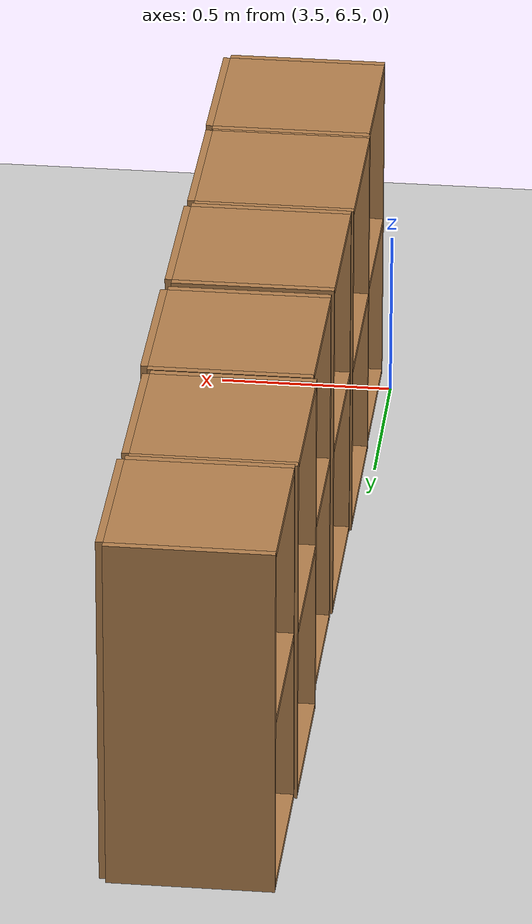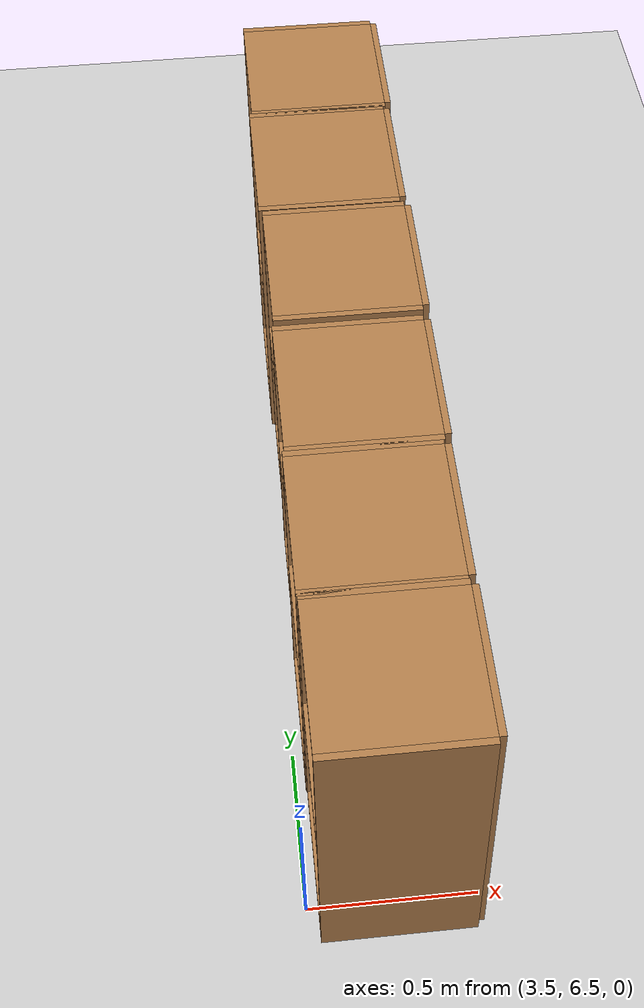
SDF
<sdf version="1.6">
 <world name="default">
  <model name="ground_plane">
   <static>1</static>
   <link name="link">
    <collision name="collision">
     <geometry><plane><normal>0 0 1</normal><size>100 100</size></plane></geometry>
     <surface>
      <contact><collide_bitmask>65535</collide_bitmask></contact>
      <friction><ode><mu>100</mu><mu2>50</mu2></ode></friction>
     </surface>
    </collision>
    <visual name="visual">
     <cast_shadows>0</cast_shadows>
     <geometry><plane><normal>0 0 1</normal><size>100 100</size></plane></geometry>
     <material>
      <script><uri>file://media/materials/scripts/gazebo.material</uri><name>Gazebo/Grey</name></script>
     </material>
    </visual>
   </link>
  </model>
  <model name="cabinet">
   <static>1</static>
   <link name="cabinet_bottom_plate">
    <inertial>
     <pose>0 0 -1 0 -0 0</pose>
     <inertia><ixx>2.05</ixx><ixy>0</ixy><ixz>0</ixz><iyy>2.05</iyy><iyz>0</iyz><izz>2.05</izz></inertia>
     <mass>25</mass>
    </inertial>
    <collision name="cabinet_bottom_plate_geom">
     <pose>0 0 0.01 0 -0 0</pose>
     <geometry><box><size>0.45 0.45 0.02</size></box></geometry>
    </collision>
    <visual name="cabinet_bottom_plate_geom_visual">
     <pose>0 0 0.01 0 -0 0</pose>
     <geometry><box><size>0.45 0.45 0.02</size></box></geometry>
     <material>
      <script><uri>file://media/materials/scripts/gazebo.material</uri><name>Gazebo/Wood</name></script>
     </material>
    </visual>
    <collision name="cabinet_bottom_plate_geom_cabinet_back_plate">
     <pose>0.235 0 0.51 0 -0 0</pose>
     <geometry><box><size>0.02 0.45 1.02</size></box></geometry>
    </collision>
    <visual name="cabinet_bottom_plate_geom_cabinet_back_plate_visual">
     <pose>0.235 0 0.51 0 -0 0</pose>
     <geometry><box><size>0.02 0.45 1.02</size></box></geometry>
     <material>
      <script><uri>file://media/materials/scripts/gazebo.material</uri><name>Gazebo/Wood</name></script>
     </material>
    </visual>
    <collision name="cabinet_bottom_plate_geom_cabinet_left_plate">
     <pose>0 0.235 0.51 0 -0 0</pose>
     <geometry><box><size>0.45 0.02 1.02</size></box></geometry>
    </collision>
    <visual name="cabinet_bottom_plate_geom_cabinet_left_plate_visual">
     <pose>0 0.235 0.51 0 -0 0</pose>
     <geometry><box><size>0.45 0.02 1.02</size></box></geometry>
     <material>
      <script><uri>file://media/materials/scripts/gazebo.material</uri><name>Gazebo/Wood</name></script>
     </material>
    </visual>
    <collision name="cabinet_bottom_plate_geom_cabinet_middle_plate">
     <pose>0 0 0.51 0 -0 0</pose>
     <geometry><box><size>0.45 0.45 0.02</size></box></geometry>
    </collision>
    <visual name="cabinet_bottom_plate_geom_cabinet_middle_plate_visual">
     <pose>0 0 0.51 0 -0 0</pose>
     <geometry><box><size>0.45 0.45 0.02</size></box></geometry>
     <material>
      <script><uri>file://media/materials/scripts/gazebo.material</uri><name>Gazebo/Wood</name></script>
     </material>
    </visual>
    <collision name="cabinet_bottom_plate_geom_cabinet_right_plate">
     <pose>0 -0.235 0.51 0 -0 0</pose>
     <geometry><box><size>0.45 0.02 1.02</size></box></geometry>
    </collision>
    <visual name="cabinet_bottom_plate_geom_cabinet_right_plate_visual">
     <pose>0 -0.235 0.51 0 -0 0</pose>
     <geometry><box><size>0.45 0.02 1.02</size></box></geometry>
     <material>
      <script><uri>file://media/materials/scripts/gazebo.material</uri><name>Gazebo/Wood</name></script>
     </material>
    </visual>
    <collision name="cabinet_bottom_plate_geom_cabinet_top_plate">
     <pose>0 0 1.01 0 -0 0</pose>
     <geometry><box><size>0.45 0.45 0.02</size></box></geometry>
    </collision>
    <visual name="cabinet_bottom_plate_geom_cabinet_top_plate_visual">
     <pose>0 0 1.01 0 -0 0</pose>
     <geometry><box><size>0.45 0.45 0.02</size></box></geometry>
     <material>
      <script><uri>file://media/materials/scripts/gazebo.material</uri><name>Gazebo/Wood</name></script>
     </material>
    </visual>
   </link>
   <pose>3.76015 6.64203 0 0 -0 0</pose>
  </model>
  <model name="cabinet_clone">
   <static>1</static>
   <link name="cabinet_bottom_plate">
    <inertial>
     <pose>0 0 -1 0 -0 0</pose>
     <inertia><ixx>2.05</ixx><ixy>0</ixy><ixz>0</ixz><iyy>2.05</iyy><iyz>0</iyz><izz>2.05</izz></inertia>
     <mass>25</mass>
    </inertial>
    <collision name="cabinet_bottom_plate_geom">
     <pose>0 0 0.01 0 -0 0</pose>
     <geometry><box><size>0.45 0.45 0.02</size></box></geometry>
    </collision>
    <visual name="cabinet_bottom_plate_geom_visual">
     <pose>0 0 0.01 0 -0 0</pose>
     <geometry><box><size>0.45 0.45 0.02</size></box></geometry>
     <material>
      <script><uri>file://media/materials/scripts/gazebo.material</uri><name>Gazebo/Wood</name></script>
     </material>
    </visual>
    <collision name="cabinet_bottom_plate_geom_cabinet_back_plate">
     <pose>0.235 0 0.51 0 -0 0</pose>
     <geometry><box><size>0.02 0.45 1.02</size></box></geometry>
    </collision>
    <visual name="cabinet_bottom_plate_geom_cabinet_back_plate_visual">
     <pose>0.235 0 0.51 0 -0 0</pose>
     <geometry><box><size>0.02 0.45 1.02</size></box></geometry>
     <material>
      <script><uri>file://media/materials/scripts/gazebo.material</uri><name>Gazebo/Wood</name></script>
     </material>
    </visual>
    <collision name="cabinet_bottom_plate_geom_cabinet_left_plate">
     <pose>0 0.235 0.51 0 -0 0</pose>
     <geometry><box><size>0.45 0.02 1.02</size></box></geometry>
    </collision>
    <visual name="cabinet_bottom_plate_geom_cabinet_left_plate_visual">
     <pose>0 0.235 0.51 0 -0 0</pose>
     <geometry><box><size>0.45 0.02 1.02</size></box></geometry>
     <material>
      <script><uri>file://media/materials/scripts/gazebo.material</uri><name>Gazebo/Wood</name></script>
     </material>
    </visual>
    <collision name="cabinet_bottom_plate_geom_cabinet_middle_plate">
     <pose>0 0 0.51 0 -0 0</pose>
     <geometry><box><size>0.45 0.45 0.02</size></box></geometry>
    </collision>
    <visual name="cabinet_bottom_plate_geom_cabinet_middle_plate_visual">
     <pose>0 0 0.51 0 -0 0</pose>
     <geometry><box><size>0.45 0.45 0.02</size></box></geometry>
     <material>
      <script><uri>file://media/materials/scripts/gazebo.material</uri><name>Gazebo/Wood</name></script>
     </material>
    </visual>
    <collision name="cabinet_bottom_plate_geom_cabinet_right_plate">
     <pose>0 -0.235 0.51 0 -0 0</pose>
     <geometry><box><size>0.45 0.02 1.02</size></box></geometry>
    </collision>
    <visual name="cabinet_bottom_plate_geom_cabinet_right_plate_visual">
     <pose>0 -0.235 0.51 0 -0 0</pose>
     <geometry><box><size>0.45 0.02 1.02</size></box></geometry>
     <material>
      <script><uri>file://media/materials/scripts/gazebo.material</uri><name>Gazebo/Wood</name></script>
     </material>
    </visual>
    <collision name="cabinet_bottom_plate_geom_cabinet_top_plate">
     <pose>0 0 1.01 0 -0 0</pose>
     <geometry><box><size>0.45 0.45 0.02</size></box></geometry>
    </collision>
    <visual name="cabinet_bottom_plate_geom_cabinet_top_plate_visual">
     <pose>0 0 1.01 0 -0 0</pose>
     <geometry><box><size>0.45 0.45 0.02</size></box></geometry>
     <material>
      <script><uri>file://media/materials/scripts/gazebo.material</uri><name>Gazebo/Wood</name></script>
     </material>
    </visual>
   </link>
   <pose>3.75696 7.12211 0 0 -0 0</pose>
  </model>
  <model name="cabinet_clone_0">
   <static>1</static>
   <link name="cabinet_bottom_plate">
    <inertial>
     <pose>0 0 -1 0 -0 0</pose>
     <inertia><ixx>2.05</ixx><ixy>0</ixy><ixz>0</ixz><iyy>2.05</iyy><iyz>0</iyz><izz>2.05</izz></inertia>
     <mass>25</mass>
    </inertial>
    <collision name="cabinet_bottom_plate_geom">
     <pose>0 0 0.01 0 -0 0</pose>
     <geometry><box><size>0.45 0.45 0.02</size></box></geometry>
    </collision>
    <visual name="cabinet_bottom_plate_geom_visual">
     <pose>0 0 0.01 0 -0 0</pose>
     <geometry><box><size>0.45 0.45 0.02</size></box></geometry>
     <material>
      <script><uri>file://media/materials/scripts/gazebo.material</uri><name>Gazebo/Wood</name></script>
     </material>
    </visual>
    <collision name="cabinet_bottom_plate_geom_cabinet_back_plate">
     <pose>0.235 0 0.51 0 -0 0</pose>
     <geometry><box><size>0.02 0.45 1.02</size></box></geometry>
    </collision>
    <visual name="cabinet_bottom_plate_geom_cabinet_back_plate_visual">
     <pose>0.235 0 0.51 0 -0 0</pose>
     <geometry><box><size>0.02 0.45 1.02</size></box></geometry>
     <material>
      <script><uri>file://media/materials/scripts/gazebo.material</uri><name>Gazebo/Wood</name></script>
     </material>
    </visual>
    <collision name="cabinet_bottom_plate_geom_cabinet_left_plate">
     <pose>0 0.235 0.51 0 -0 0</pose>
     <geometry><box><size>0.45 0.02 1.02</size></box></geometry>
    </collision>
    <visual name="cabinet_bottom_plate_geom_cabinet_left_plate_visual">
     <pose>0 0.235 0.51 0 -0 0</pose>
     <geometry><box><size>0.45 0.02 1.02</size></box></geometry>
     <material>
      <script><uri>file://media/materials/scripts/gazebo.material</uri><name>Gazebo/Wood</name></script>
     </material>
    </visual>
    <collision name="cabinet_bottom_plate_geom_cabinet_middle_plate">
     <pose>0 0 0.51 0 -0 0</pose>
     <geometry><box><size>0.45 0.45 0.02</size></box></geometry>
    </collision>
    <visual name="cabinet_bottom_plate_geom_cabinet_middle_plate_visual">
     <pose>0 0 0.51 0 -0 0</pose>
     <geometry><box><size>0.45 0.45 0.02</size></box></geometry>
     <material>
      <script><uri>file://media/materials/scripts/gazebo.material</uri><name>Gazebo/Wood</name></script>
     </material>
    </visual>
    <collision name="cabinet_bottom_plate_geom_cabinet_right_plate">
     <pose>0 -0.235 0.51 0 -0 0</pose>
     <geometry><box><size>0.45 0.02 1.02</size></box></geometry>
    </collision>
    <visual name="cabinet_bottom_plate_geom_cabinet_right_plate_visual">
     <pose>0 -0.235 0.51 0 -0 0</pose>
     <geometry><box><size>0.45 0.02 1.02</size></box></geometry>
     <material>
      <script><uri>file://media/materials/scripts/gazebo.material</uri><name>Gazebo/Wood</name></script>
     </material>
    </visual>
    <collision name="cabinet_bottom_plate_geom_cabinet_top_plate">
     <pose>0 0 1.01 0 -0 0</pose>
     <geometry><box><size>0.45 0.45 0.02</size></box></geometry>
    </collision>
    <visual name="cabinet_bottom_plate_geom_cabinet_top_plate_visual">
     <pose>0 0 1.01 0 -0 0</pose>
     <geometry><box><size>0.45 0.45 0.02</size></box></geometry>
     <material>
      <script><uri>file://media/materials/scripts/gazebo.material</uri><name>Gazebo/Wood</name></script>
     </material>
    </visual>
   </link>
   <pose>3.76265 7.60728 0 0 -0 0</pose>
  </model>
  <model name="cabinet_clone_1">
   <static>1</static>
   <link name="cabinet_bottom_plate">
    <inertial>
     <pose>0 0 -1 0 -0 0</pose>
     <inertia><ixx>2.05</ixx><ixy>0</ixy><ixz>0</ixz><iyy>2.05</iyy><iyz>0</iyz><izz>2.05</izz></inertia>
     <mass>25</mass>
    </inertial>
    <collision name="cabinet_bottom_plate_geom">
     <pose>0 0 0.01 0 -0 0</pose>
     <geometry><box><size>0.45 0.45 0.02</size></box></geometry>
    </collision>
    <visual name="cabinet_bottom_plate_geom_visual">
     <pose>0 0 0.01 0 -0 0</pose>
     <geometry><box><size>0.45 0.45 0.02</size></box></geometry>
     <material>
      <script><uri>file://media/materials/scripts/gazebo.material</uri><name>Gazebo/Wood</name></script>
     </material>
    </visual>
    <collision name="cabinet_bottom_plate_geom_cabinet_back_plate">
     <pose>0.235 0 0.51 0 -0 0</pose>
     <geometry><box><size>0.02 0.45 1.02</size></box></geometry>
    </collision>
    <visual name="cabinet_bottom_plate_geom_cabinet_back_plate_visual">
     <pose>0.235 0 0.51 0 -0 0</pose>
     <geometry><box><size>0.02 0.45 1.02</size></box></geometry>
     <material>
      <script><uri>file://media/materials/scripts/gazebo.material</uri><name>Gazebo/Wood</name></script>
     </material>
    </visual>
    <collision name="cabinet_bottom_plate_geom_cabinet_left_plate">
     <pose>0 0.235 0.51 0 -0 0</pose>
     <geometry><box><size>0.45 0.02 1.02</size></box></geometry>
    </collision>
    <visual name="cabinet_bottom_plate_geom_cabinet_left_plate_visual">
     <pose>0 0.235 0.51 0 -0 0</pose>
     <geometry><box><size>0.45 0.02 1.02</size></box></geometry>
     <material>
      <script><uri>file://media/materials/scripts/gazebo.material</uri><name>Gazebo/Wood</name></script>
     </material>
    </visual>
    <collision name="cabinet_bottom_plate_geom_cabinet_middle_plate">
     <pose>0 0 0.51 0 -0 0</pose>
     <geometry><box><size>0.45 0.45 0.02</size></box></geometry>
    </collision>
    <visual name="cabinet_bottom_plate_geom_cabinet_middle_plate_visual">
     <pose>0 0 0.51 0 -0 0</pose>
     <geometry><box><size>0.45 0.45 0.02</size></box></geometry>
     <material>
      <script><uri>file://media/materials/scripts/gazebo.material</uri><name>Gazebo/Wood</name></script>
     </material>
    </visual>
    <collision name="cabinet_bottom_plate_geom_cabinet_right_plate">
     <pose>0 -0.235 0.51 0 -0 0</pose>
     <geometry><box><size>0.45 0.02 1.02</size></box></geometry>
    </collision>
    <visual name="cabinet_bottom_plate_geom_cabinet_right_plate_visual">
     <pose>0 -0.235 0.51 0 -0 0</pose>
     <geometry><box><size>0.45 0.02 1.02</size></box></geometry>
     <material>
      <script><uri>file://media/materials/scripts/gazebo.material</uri><name>Gazebo/Wood</name></script>
     </material>
    </visual>
    <collision name="cabinet_bottom_plate_geom_cabinet_top_plate">
     <pose>0 0 1.01 0 -0 0</pose>
     <geometry><box><size>0.45 0.45 0.02</size></box></geometry>
    </collision>
    <visual name="cabinet_bottom_plate_geom_cabinet_top_plate_visual">
     <pose>0 0 1.01 0 -0 0</pose>
     <geometry><box><size>0.45 0.45 0.02</size></box></geometry>
     <material>
      <script><uri>file://media/materials/scripts/gazebo.material</uri><name>Gazebo/Wood</name></script>
     </material>
    </visual>
   </link>
   <pose>3.76764 8.11899 0 0 -0 0</pose>
  </model>
  <model name="cabinet_clone_2">
   <static>1</static>
   <link name="cabinet_bottom_plate">
    <inertial>
     <pose>0 0 -1 0 -0 0</pose>
     <inertia><ixx>2.05</ixx><ixy>0</ixy><ixz>0</ixz><iyy>2.05</iyy><iyz>0</iyz><izz>2.05</izz></inertia>
     <mass>25</mass>
    </inertial>
    <collision name="cabinet_bottom_plate_geom">
     <pose>0 0 0.01 0 -0 0</pose>
     <geometry><box><size>0.45 0.45 0.02</size></box></geometry>
    </collision>
    <visual name="cabinet_bottom_plate_geom_visual">
     <pose>0 0 0.01 0 -0 0</pose>
     <geometry><box><size>0.45 0.45 0.02</size></box></geometry>
     <material>
      <script><uri>file://media/materials/scripts/gazebo.material</uri><name>Gazebo/Wood</name></script>
     </material>
    </visual>
    <collision name="cabinet_bottom_plate_geom_cabinet_back_plate">
     <pose>0.235 0 0.51 0 -0 0</pose>
     <geometry><box><size>0.02 0.45 1.02</size></box></geometry>
    </collision>
    <visual name="cabinet_bottom_plate_geom_cabinet_back_plate_visual">
     <pose>0.235 0 0.51 0 -0 0</pose>
     <geometry><box><size>0.02 0.45 1.02</size></box></geometry>
     <material>
      <script><uri>file://media/materials/scripts/gazebo.material</uri><name>Gazebo/Wood</name></script>
     </material>
    </visual>
    <collision name="cabinet_bottom_plate_geom_cabinet_left_plate">
     <pose>0 0.235 0.51 0 -0 0</pose>
     <geometry><box><size>0.45 0.02 1.02</size></box></geometry>
    </collision>
    <visual name="cabinet_bottom_plate_geom_cabinet_left_plate_visual">
     <pose>0 0.235 0.51 0 -0 0</pose>
     <geometry><box><size>0.45 0.02 1.02</size></box></geometry>
     <material>
      <script><uri>file://media/materials/scripts/gazebo.material</uri><name>Gazebo/Wood</name></script>
     </material>
    </visual>
    <collision name="cabinet_bottom_plate_geom_cabinet_middle_plate">
     <pose>0 0 0.51 0 -0 0</pose>
     <geometry><box><size>0.45 0.45 0.02</size></box></geometry>
    </collision>
    <visual name="cabinet_bottom_plate_geom_cabinet_middle_plate_visual">
     <pose>0 0 0.51 0 -0 0</pose>
     <geometry><box><size>0.45 0.45 0.02</size></box></geometry>
     <material>
      <script><uri>file://media/materials/scripts/gazebo.material</uri><name>Gazebo/Wood</name></script>
     </material>
    </visual>
    <collision name="cabinet_bottom_plate_geom_cabinet_right_plate">
     <pose>0 -0.235 0.51 0 -0 0</pose>
     <geometry><box><size>0.45 0.02 1.02</size></box></geometry>
    </collision>
    <visual name="cabinet_bottom_plate_geom_cabinet_right_plate_visual">
     <pose>0 -0.235 0.51 0 -0 0</pose>
     <geometry><box><size>0.45 0.02 1.02</size></box></geometry>
     <material>
      <script><uri>file://media/materials/scripts/gazebo.material</uri><name>Gazebo/Wood</name></script>
     </material>
    </visual>
    <collision name="cabinet_bottom_plate_geom_cabinet_top_plate">
     <pose>0 0 1.01 0 -0 0</pose>
     <geometry><box><size>0.45 0.45 0.02</size></box></geometry>
    </collision>
    <visual name="cabinet_bottom_plate_geom_cabinet_top_plate_visual">
     <pose>0 0 1.01 0 -0 0</pose>
     <geometry><box><size>0.45 0.45 0.02</size></box></geometry>
     <material>
      <script><uri>file://media/materials/scripts/gazebo.material</uri><name>Gazebo/Wood</name></script>
     </material>
    </visual>
   </link>
   <pose>3.75705 8.61178 0 0 -0 0</pose>
  </model>
  <model name="cabinet_clone_3">
   <static>1</static>
   <link name="cabinet_bottom_plate">
    <inertial>
     <pose>0 0 -1 0 -0 0</pose>
     <inertia><ixx>2.05</ixx><ixy>0</ixy><ixz>0</ixz><iyy>2.05</iyy><iyz>0</iyz><izz>2.05</izz></inertia>
     <mass>25</mass>
    </inertial>
    <collision name="cabinet_bottom_plate_geom">
     <pose>0 0 0.01 0 -0 0</pose>
     <geometry><box><size>0.45 0.45 0.02</size></box></geometry>
    </collision>
    <visual name="cabinet_bottom_plate_geom_visual">
     <pose>0 0 0.01 0 -0 0</pose>
     <geometry><box><size>0.45 0.45 0.02</size></box></geometry>
     <material>
      <script><uri>file://media/materials/scripts/gazebo.material</uri><name>Gazebo/Wood</name></script>
     </material>
    </visual>
    <collision name="cabinet_bottom_plate_geom_cabinet_back_plate">
     <pose>0.235 0 0.51 0 -0 0</pose>
     <geometry><box><size>0.02 0.45 1.02</size></box></geometry>
    </collision>
    <visual name="cabinet_bottom_plate_geom_cabinet_back_plate_visual">
     <pose>0.235 0 0.51 0 -0 0</pose>
     <geometry><box><size>0.02 0.45 1.02</size></box></geometry>
     <material>
      <script><uri>file://media/materials/scripts/gazebo.material</uri><name>Gazebo/Wood</name></script>
     </material>
    </visual>
    <collision name="cabinet_bottom_plate_geom_cabinet_left_plate">
     <pose>0 0.235 0.51 0 -0 0</pose>
     <geometry><box><size>0.45 0.02 1.02</size></box></geometry>
    </collision>
    <visual name="cabinet_bottom_plate_geom_cabinet_left_plate_visual">
     <pose>0 0.235 0.51 0 -0 0</pose>
     <geometry><box><size>0.45 0.02 1.02</size></box></geometry>
     <material>
      <script><uri>file://media/materials/scripts/gazebo.material</uri><name>Gazebo/Wood</name></script>
     </material>
    </visual>
    <collision name="cabinet_bottom_plate_geom_cabinet_middle_plate">
     <pose>0 0 0.51 0 -0 0</pose>
     <geometry><box><size>0.45 0.45 0.02</size></box></geometry>
    </collision>
    <visual name="cabinet_bottom_plate_geom_cabinet_middle_plate_visual">
     <pose>0 0 0.51 0 -0 0</pose>
     <geometry><box><size>0.45 0.45 0.02</size></box></geometry>
     <material>
      <script><uri>file://media/materials/scripts/gazebo.material</uri><name>Gazebo/Wood</name></script>
     </material>
    </visual>
    <collision name="cabinet_bottom_plate_geom_cabinet_right_plate">
     <pose>0 -0.235 0.51 0 -0 0</pose>
     <geometry><box><size>0.45 0.02 1.02</size></box></geometry>
    </collision>
    <visual name="cabinet_bottom_plate_geom_cabinet_right_plate_visual">
     <pose>0 -0.235 0.51 0 -0 0</pose>
     <geometry><box><size>0.45 0.02 1.02</size></box></geometry>
     <material>
      <script><uri>file://media/materials/scripts/gazebo.material</uri><name>Gazebo/Wood</name></script>
     </material>
    </visual>
    <collision name="cabinet_bottom_plate_geom_cabinet_top_plate">
     <pose>0 0 1.01 0 -0 0</pose>
     <geometry><box><size>0.45 0.45 0.02</size></box></geometry>
    </collision>
    <visual name="cabinet_bottom_plate_geom_cabinet_top_plate_visual">
     <pose>0 0 1.01 0 -0 0</pose>
     <geometry><box><size>0.45 0.45 0.02</size></box></geometry>
     <material>
      <script><uri>file://media/materials/scripts/gazebo.material</uri><name>Gazebo/Wood</name></script>
     </material>
    </visual>
   </link>
   <pose>3.76519 9.09514 0 0 -0 0</pose>
  </model>
 </world>
</sdf>
